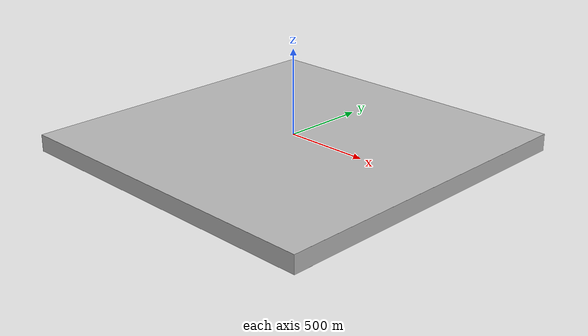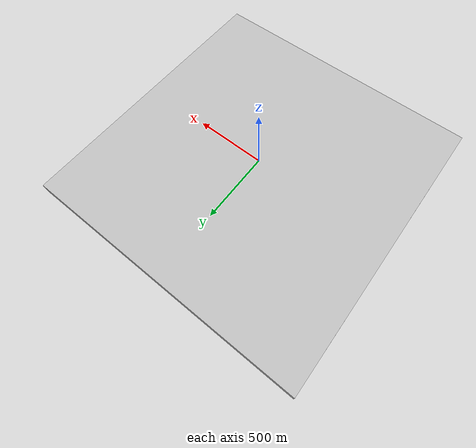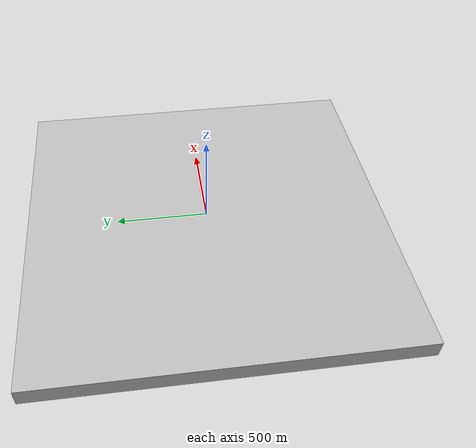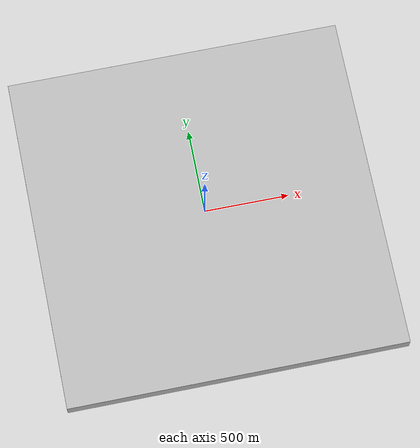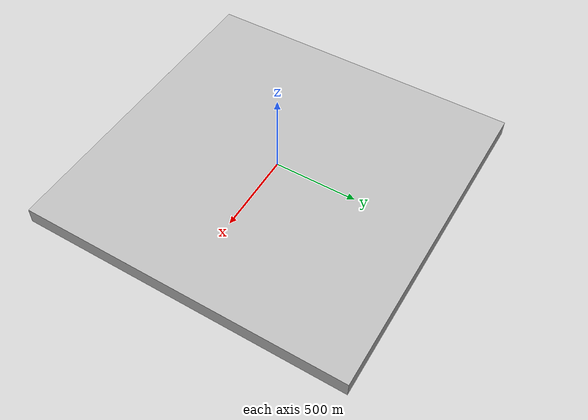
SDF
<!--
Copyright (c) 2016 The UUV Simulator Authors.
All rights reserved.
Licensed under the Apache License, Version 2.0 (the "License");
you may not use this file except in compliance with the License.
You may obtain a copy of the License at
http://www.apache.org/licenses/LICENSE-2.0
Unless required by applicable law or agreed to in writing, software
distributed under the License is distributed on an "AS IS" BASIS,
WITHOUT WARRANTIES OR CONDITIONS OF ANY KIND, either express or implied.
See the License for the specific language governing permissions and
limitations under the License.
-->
<?xml version="1.0" ?>
<sdf version="1.4">
  <world name="munkholmen">
    <physics name="default_physics" default="true" type="ode">
      <max_step_size>0.002</max_step_size>
      <real_time_factor>1</real_time_factor>
      <real_time_update_rate>500</real_time_update_rate>
    </physics>
    <scene>
      <ambient>0.01 0.01 0.01 1.0</ambient>
      <sky>
        <clouds>
          <speed>12</speed>
        </clouds>
      </sky>
      <shadows>0</shadows>
      <fog>
        <color>0.1 0.2 0.3 1.0</color>
        <type>linear</type>
        <density>0.1</density>
        <start>10</start>
        <end>40</end>
      </fog>
    </scene>

    <!-- Origin placed somewhere in the middle of the North Sea  -->
    <spherical_coordinates>
      <latitude_deg>56.71897669633431</latitude_deg>
      <longitude_deg>3.515625</longitude_deg>
    </spherical_coordinates>

    <!-- Global light source -->
    <light type="directional" name="sun_diffuse_1">
      <pose>-100 500 -20 0 0 0</pose>
      <diffuse>0.8 0.8 0.8 1</diffuse>
      <specular>1 1 1 1</specular>
      <direction>-1 -1 0</direction>
      <cast_shadows>true</cast_shadows>
    </light>

    <light type="directional" name="sun_diffuse_2">
      <pose>100 50 20 0 0 0</pose>
      <diffuse>0.6 0.6 0.6 1</diffuse>
      <specular>0 0 0 1</specular>
      <direction>-0.3 -0.3 -1</direction>
      <cast_shadows>true</cast_shadows>
    </light>

    <light type="directional" name="sun_diffuse_3">
      <pose>-150 -130 50 0 0 0</pose>
      <diffuse>0.6 0.6 0.6 1</diffuse>
      <specular>0.2 0.2 0.2 1</specular>
      <direction>0.5 0.5 -1</direction>
      <cast_shadows>true</cast_shadows>
    </light>

    <include>
      <uri>model://ocean_box</uri>
      <pose>0 0 0 0 0 0</pose>
    </include>

    <!-- include AprilTag in sea floor -->
    <include>
      <uri>model://april_tag_36_11_00000</uri>
      <pose>0 0 -60 0 0 0</pose>
    </include>

    <plugin name="underwater_current_plugin" filename="libuuv_underwater_current_ros_plugin.so">
      <namespace>hydrodynamics</namespace>
      <constant_current>
        <topic>current_velocity</topic>
        <velocity>
          <mean>0</mean>
          <min>0</min>
          <max>5</max>
          <mu>0.0</mu>
          <noiseAmp>0.0</noiseAmp>
        </velocity>

        <horizontal_angle>
          <mean>0</mean>
          <min>-3.141592653589793238</min>
          <max>3.141592653589793238</max>
          <mu>0.0</mu>
          <noiseAmp>0.0</noiseAmp>
        </horizontal_angle>

        <vertical_angle>
          <mean>0</mean>
          <min>-3.141592653589793238</min>
          <max>3.141592653589793238</max>
          <mu>0.0</mu>
          <noiseAmp>0.0</noiseAmp>
        </vertical_angle>
      </constant_current>
    </plugin>

    <plugin name="sc_interface" filename="libuuv_sc_ros_interface_plugin.so"/>

    <gui fullscreen='0'>
      <camera name='user_camera'>
        <pose frame=''>-25 25 -55 0 0 -0.8</pose>
        <view_controller>orbit</view_controller>
        <projection_type>perspective</projection_type>
      </camera>
    </gui>
  </world>
</sdf>

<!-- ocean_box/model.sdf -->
<sdf version="1.5">
  <model name="ocean_box">
    <static>true</static>
    <link name="link">
      <visual name="ground">
        <cast_shadows>false</cast_shadows>
        <pose>0 0 -100 0 0 0</pose>
        <geometry>
          <box>
            <size>2000 2000 .1</size>
          </box>
        </geometry>
        <material>
          <script>
            <uri>file://Media/materials/scripts/sand.material</uri>
            <name>UUVSimulator/SandAndStones</name>
          </script>
        </material>
      </visual>

      <collision name="ground">
        <pose>0 0 -100 0 0 0</pose>
        <geometry>
          <box>
            <size>2000 2000 .1</size>
          </box>
        </geometry>
      </collision>

      <visual name="surface">
        <cast_shadows>false</cast_shadows>
        <pose>0 0 0 0 0 0</pose>
        <geometry>
          <box>
            <size>2000 2000 .1</size>
          </box>
        </geometry>
        <material>
          <script>
            <uri>file://Media/materials/scripts/water.material</uri>
            <name>UUVSimulator/StaticDeepWater</name>
          </script>
        </material>
      </visual>

      <visual name="north">
        <cast_shadows>false</cast_shadows>
        <pose>1000 0 -50 0 0 0</pose>
        <geometry>
          <box>
            <size>.1 2000 100</size>
          </box>
        </geometry>
        <material>
          <script>
            <uri>file://Media/materials/scripts/water.material</uri>
            <name>UUVSimulator/SeaWall</name>
          </script>
        </material>
      </visual>

      <visual name="south">
        <cast_shadows>false</cast_shadows>
        <pose>-1000 0 -50 0 0 0</pose>
        <geometry>
          <box>
            <size>.1 2000 100</size>
          </box>
        </geometry>
        <material>
          <script>
            <uri>file://Media/materials/scripts/water.material</uri>
            <name>UUVSimulator/SeaWall</name>
          </script>
        </material>
      </visual>

      <visual name="east">
        <cast_shadows>false</cast_shadows>
        <pose>0 -1000 -50 0 0 0</pose>
        <geometry>
          <box>
            <size>2000 .1 100</size>
          </box>
        </geometry>
        <material>
          <script>
            <uri>file://Media/materials/scripts/water.material</uri>
            <name>UUVSimulator/SeaWall</name>
          </script>
        </material>
      </visual>

      <visual name="west">
        <cast_shadows>false</cast_shadows>
        <pose>0 1000 -50 0 0 0</pose>
        <geometry>
          <box>
            <size>2000 .1 100</size>
          </box>
        </geometry>
        <material>
          <script>
            <uri>file://Media/materials/scripts/water.material</uri>
            <name>UUVSimulator/SeaWall</name>
          </script>
        </material>
      </visual>
    </link>
  </model>
</sdf>

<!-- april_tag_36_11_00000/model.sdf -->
<sdf version="1.5">
  <model name="april_tag/tag36_11_00000">
    <link name="tag36_11_00000">
      <pose>0 0 0 0 0 0</pose>
      <inertial>
        <mass>0.0001</mass>
        <inertia>
          <ixx>0.00001</ixx>
          <iyy>0.00001</iyy>
          <izz>0.00001</izz>
          <ixy>0</ixy>
          <ixz>0</ixz>
          <iyz>0</iyz>
        </inertia>
      </inertial>

      <collision name="tag36_11_00000_collision">
        <geometry>
            <box>
              <size>0.15 0.15 0.001</size>
            </box>
        </geometry>
      </collision>

      <visual name="tag36_11_00000_visual">
        <pose>0 0 0 0 0 1.57</pose>
        <geometry>
            <box>
              <size>0.15 0.15 0.001</size>
            </box>
        </geometry>
        <material>
          <script>
            <uri>file://Media/materials/scripts/fiducials.material</uri>
            <name>AprilTag/Tag36_11_00000</name>
          </script>
        </material>
      </visual>
    </link>
  </model>
</sdf>
